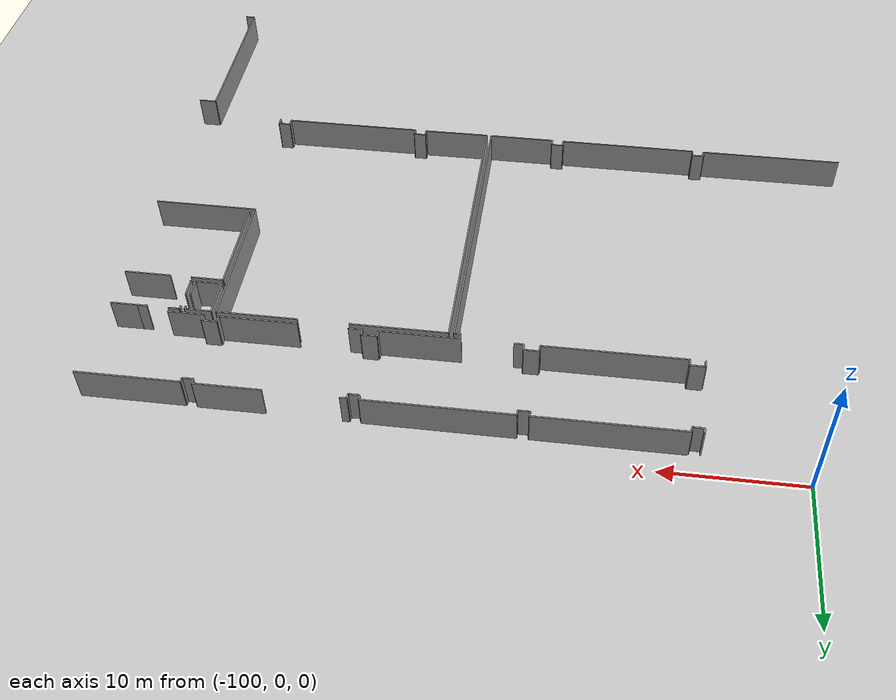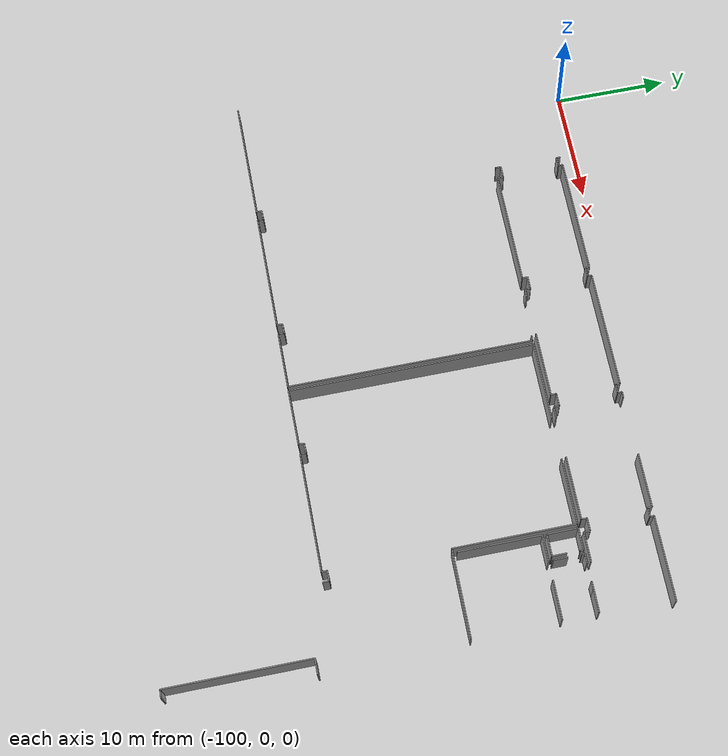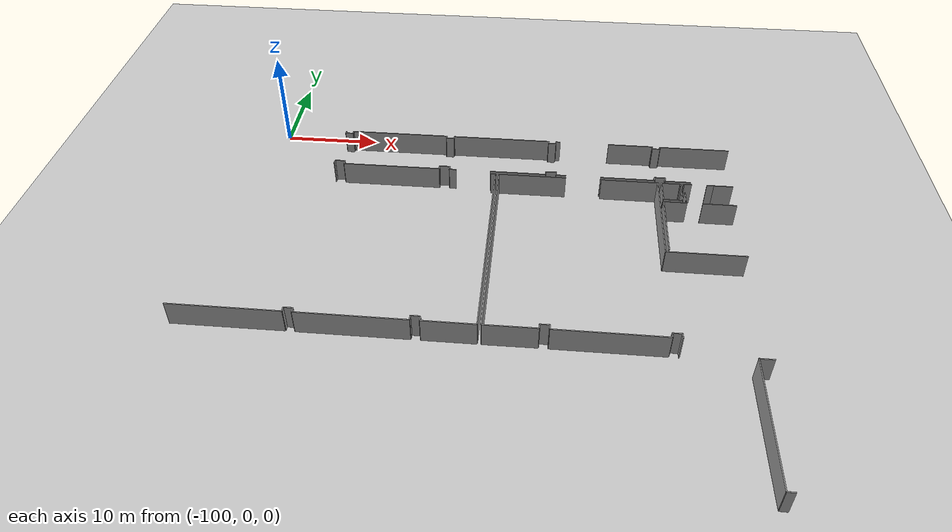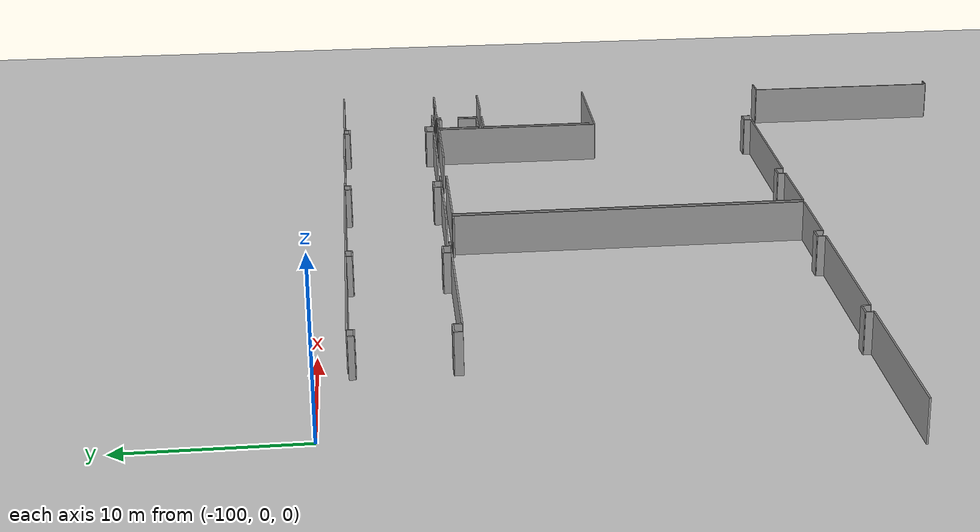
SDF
<sdf version="1.6">
 <world name="default">
  <model name="ground_plane">
   <static>1</static>
   <link name="link">
    <collision name="collision">
     <geometry><plane><normal>0 0 1</normal><size>100 100</size></plane></geometry>
     <surface><friction><ode><mu>100</mu><mu2>50</mu2></ode></friction></surface>
    </collision>
    <visual name="visual">
     <cast_shadows>0</cast_shadows>
     <geometry><plane><normal>0 0 1</normal><size>100 100</size></plane></geometry>
     <material>
      <script><uri>file://media/materials/scripts/gazebo.material</uri><name>Gazebo/Grey</name></script>
     </material>
    </visual>
   </link>
  </model>
  <model name="50015847">
   <static>1</static>
   <link name="Wall_149">
    <collision name="Wall_149_Collision">
     <geometry><box><size>0.475415670921 0.1 2.5</size></box></geometry>
     <pose>0.23770783546 0 1.25 0 0 0</pose>
    </collision>
    <visual name="Wall_149_Visual">
     <pose>0.23770783546 0 1.25 0 0 0</pose>
     <geometry><box><size>0.475415670921 0.1 2.5</size></box></geometry>
     <material>
      <script><uri>file://media/materials/scripts/gazebo.material</uri><name>Gazebo/Grey</name></script>
      <ambient>1 1 1 1</ambient>
     </material>
    </visual>
    <pose>56.0591345909 -51.9578481721 0 0 0 0.0</pose>
   </link>
   <link name="Wall_150">
    <collision name="Wall_150_Collision">
     <geometry><box><size>21.4735343469 0.1 2.5</size></box></geometry>
     <pose>10.7367671734 0 1.25 0 0 0</pose>
    </collision>
    <visual name="Wall_150_Visual">
     <pose>10.7367671734 0 1.25 0 0 0</pose>
     <geometry><box><size>21.4735343469 0.1 2.5</size></box></geometry>
     <material>
      <script><uri>file://media/materials/scripts/gazebo.material</uri><name>Gazebo/Grey</name></script>
      <ambient>1 1 1 1</ambient>
     </material>
    </visual>
    <pose>56.5345502619 -51.9578481721 0 0 0 -1.57079632679</pose>
   </link>
   <link name="Wall_151">
    <collision name="Wall_151_Collision">
     <geometry><box><size>4.96949204251 0.1 2.5</size></box></geometry>
     <pose>2.48474602125 0 1.25 0 0 0</pose>
    </collision>
    <visual name="Wall_151_Visual">
     <pose>2.48474602125 0 1.25 0 0 0</pose>
     <geometry><box><size>4.96949204251 0.1 2.5</size></box></geometry>
     <material>
      <script><uri>file://media/materials/scripts/gazebo.material</uri><name>Gazebo/Grey</name></script>
      <ambient>1 1 1 1</ambient>
     </material>
    </visual>
    <pose>56.5345502619 -73.4313825189 0 0 0 3.14159265359</pose>
   </link>
   <link name="Wall_152">
    <collision name="Wall_152_Collision">
     <geometry><box><size>0.513296384807 0.1 2.5</size></box></geometry>
     <pose>0.256648192404 0 1.25 0 0 0</pose>
    </collision>
    <visual name="Wall_152_Visual">
     <pose>0.256648192404 0 1.25 0 0 0</pose>
     <geometry><box><size>0.513296384807 0.1 2.5</size></box></geometry>
     <material>
      <script><uri>file://media/materials/scripts/gazebo.material</uri><name>Gazebo/Grey</name></script>
      <ambient>1 1 1 1</ambient>
     </material>
    </visual>
    <pose>51.5650582194 -73.4313825189 0 0 0 1.57079632679</pose>
   </link>
   <link name="Wall_153">
    <collision name="Wall_153_Collision">
     <geometry><box><size>0.880917272589 0.1 2.5</size></box></geometry>
     <pose>0.440458636294 0 1.25 0 0 0</pose>
    </collision>
    <visual name="Wall_153_Visual">
     <pose>0.440458636294 0 1.25 0 0 0</pose>
     <geometry><box><size>0.880917272589 0.1 2.5</size></box></geometry>
     <material>
      <script><uri>file://media/materials/scripts/gazebo.material</uri><name>Gazebo/Grey</name></script>
      <ambient>1 1 1 1</ambient>
     </material>
    </visual>
    <pose>51.5650582194 -72.9180861341 0 0 0 3.14159265359</pose>
   </link>
   <link name="Wall_154">
    <collision name="Wall_154_Collision">
     <geometry><box><size>0.506940560329 0.1 2.5</size></box></geometry>
     <pose>0.253470280165 0 1.25 0 0 0</pose>
    </collision>
    <visual name="Wall_154_Visual">
     <pose>0.253470280165 0 1.25 0 0 0</pose>
     <geometry><box><size>0.506940560329 0.1 2.5</size></box></geometry>
     <material>
      <script><uri>file://media/materials/scripts/gazebo.material</uri><name>Gazebo/Grey</name></script>
      <ambient>1 1 1 1</ambient>
     </material>
    </visual>
    <pose>50.6841409468 -72.9180861341 0 0 0 -1.57079632679</pose>
   </link>
   <link name="Wall_155">
    <collision name="Wall_155_Collision">
     <geometry><box><size>10.3630446942 0.1 2.5</size></box></geometry>
     <pose>5.18152234708 0 1.25 0 0 0</pose>
    </collision>
    <visual name="Wall_155_Visual">
     <pose>5.18152234708 0 1.25 0 0 0</pose>
     <geometry><box><size>10.3630446942 0.1 2.5</size></box></geometry>
     <material>
      <script><uri>file://media/materials/scripts/gazebo.material</uri><name>Gazebo/Grey</name></script>
      <ambient>1 1 1 1</ambient>
     </material>
    </visual>
    <pose>50.6841409468 -73.4250266945 0 0 0 3.14159265359</pose>
   </link>
   <link name="Wall_156">
    <collision name="Wall_156_Collision">
     <geometry><box><size>0.490161183709 0.1 2.5</size></box></geometry>
     <pose>0.245080591854 0 1.25 0 0 0</pose>
    </collision>
    <visual name="Wall_156_Visual">
     <pose>0.245080591854 0 1.25 0 0 0</pose>
     <geometry><box><size>0.490161183709 0.1 2.5</size></box></geometry>
     <material>
      <script><uri>file://media/materials/scripts/gazebo.material</uri><name>Gazebo/Grey</name></script>
      <ambient>1 1 1 1</ambient>
     </material>
    </visual>
    <pose>40.3210962526 -73.4250266945 0 0 0 1.57079632679</pose>
   </link>
   <link name="Wall_157">
    <collision name="Wall_157_Collision">
     <geometry><box><size>0.85778207149 0.1 2.5</size></box></geometry>
     <pose>0.428891035745 0 1.25 0 0 0</pose>
    </collision>
    <visual name="Wall_157_Visual">
     <pose>0.428891035745 0 1.25 0 0 0</pose>
     <geometry><box><size>0.85778207149 0.1 2.5</size></box></geometry>
     <material>
      <script><uri>file://media/materials/scripts/gazebo.material</uri><name>Gazebo/Grey</name></script>
      <ambient>1 1 1 1</ambient>
     </material>
    </visual>
    <pose>40.3210962526 -72.9348655108 0 0 0 3.14159265359</pose>
   </link>
   <link name="Wall_158">
    <collision name="Wall_158_Collision">
     <geometry><box><size>0.475415670921 0.1 2.5</size></box></geometry>
     <pose>0.23770783546 0 1.25 0 0 0</pose>
    </collision>
    <visual name="Wall_158_Visual">
     <pose>0.23770783546 0 1.25 0 0 0</pose>
     <geometry><box><size>0.475415670921 0.1 2.5</size></box></geometry>
     <material>
      <script><uri>file://media/materials/scripts/gazebo.material</uri><name>Gazebo/Grey</name></script>
      <ambient>1 1 1 1</ambient>
     </material>
    </visual>
    <pose>39.4633141811 -72.9348655108 0 0 0 -1.57079632679</pose>
   </link>
   <link name="Wall_159">
    <collision name="Wall_159_Collision">
     <geometry><box><size>10.6203387055 0.1 2.5</size></box></geometry>
     <pose>5.31016935276 0 1.25 0 0 0</pose>
    </collision>
    <visual name="Wall_159_Visual">
     <pose>5.31016935276 0 1.25 0 0 0</pose>
     <geometry><box><size>10.6203387055 0.1 2.5</size></box></geometry>
     <material>
      <script><uri>file://media/materials/scripts/gazebo.material</uri><name>Gazebo/Grey</name></script>
      <ambient>1 1 1 1</ambient>
     </material>
    </visual>
    <pose>39.4633141811 -73.4102811817 0 0 0 -3.14020423106</pose>
   </link>
   <link name="Wall_1055">
    <collision name="Wall_1055_Collision">
     <geometry><box><size>1.94411959119 0.1 2.5</size></box></geometry>
     <pose>0.972059795597 0 1.25 0 0 0</pose>
    </collision>
    <visual name="Wall_1055_Visual">
     <pose>0.972059795597 0 1.25 0 0 0</pose>
     <geometry><box><size>1.94411959119 0.1 2.5</size></box></geometry>
     <material>
      <script><uri>file://media/materials/scripts/gazebo.material</uri><name>Gazebo/Grey</name></script>
      <ambient>1 1 1 1</ambient>
     </material>
    </visual>
    <pose>78.989932374 -51.9253063507 0 0 0 0.0</pose>
   </link>
   <link name="Wall_1058">
    <collision name="Wall_1058_Collision">
     <geometry><box><size>0.0655921086083 0.1 2.5</size></box></geometry>
     <pose>0.0327960543042 0 1.25 0 0 0</pose>
    </collision>
    <visual name="Wall_1058_Visual">
     <pose>0.0327960543042 0 1.25 0 0 0</pose>
     <geometry><box><size>0.0655921086083 0.1 2.5</size></box></geometry>
     <material>
      <script><uri>file://media/materials/scripts/gazebo.material</uri><name>Gazebo/Grey</name></script>
      <ambient>1 1 1 1</ambient>
     </material>
    </visual>
    <pose>75.9993898409 -54.6425484314 0 0 0 3.14159265359</pose>
   </link>
   <link name="Wall_1059">
    <collision name="Wall_1059_Collision">
     <geometry><box><size>1.29277469873 0.1 2.5</size></box></geometry>
     <pose>0.646387349367 0 1.25 0 0 0</pose>
    </collision>
    <visual name="Wall_1059_Visual">
     <pose>0.646387349367 0 1.25 0 0 0</pose>
     <geometry><box><size>1.29277469873 0.1 2.5</size></box></geometry>
     <material>
      <script><uri>file://media/materials/scripts/gazebo.material</uri><name>Gazebo/Grey</name></script>
      <ambient>1 1 1 1</ambient>
     </material>
    </visual>
    <pose>75.9337977322 -54.6425484314 0 0 0 1.57079632679</pose>
   </link>
   <link name="Wall_1060">
    <collision name="Wall_1060_Collision">
     <geometry><box><size>0.270758122744 0.1 2.5</size></box></geometry>
     <pose>0.135379061372 0 1.25 0 0 0</pose>
    </collision>
    <visual name="Wall_1060_Visual">
     <pose>0.135379061372 0 1.25 0 0 0</pose>
     <geometry><box><size>0.270758122744 0.1 2.5</size></box></geometry>
     <material>
      <script><uri>file://media/materials/scripts/gazebo.material</uri><name>Gazebo/Grey</name></script>
      <ambient>1 1 1 1</ambient>
     </material>
    </visual>
    <pose>75.9337977322 -52.1998779682 0 0 0 1.57079632679</pose>
   </link>
   <link name="Wall_1061">
    <collision name="Wall_1061_Collision">
     <geometry><box><size>0.823714852291 0.1 2.5</size></box></geometry>
     <pose>0.411857426145 0 1.25 0 0 0</pose>
    </collision>
    <visual name="Wall_1061_Visual">
     <pose>0.411857426145 0 1.25 0 0 0</pose>
     <geometry><box><size>0.823714852291 0.1 2.5</size></box></geometry>
     <material>
      <script><uri>file://media/materials/scripts/gazebo.material</uri><name>Gazebo/Grey</name></script>
      <ambient>1 1 1 1</ambient>
     </material>
    </visual>
    <pose>75.9337977322 -51.9291198454 0 0 0 0.0</pose>
   </link>
   <link name="Wall_1062">
    <collision name="Wall_1062_Collision">
     <geometry><box><size>0.706523740757 0.1 2.5</size></box></geometry>
     <pose>0.353261870378 0 1.25 0 0 0</pose>
    </collision>
    <visual name="Wall_1062_Visual">
     <pose>0.353261870378 0 1.25 0 0 0</pose>
     <geometry><box><size>0.706523740757 0.1 2.5</size></box></geometry>
     <material>
      <script><uri>file://media/materials/scripts/gazebo.material</uri><name>Gazebo/Grey</name></script>
      <ambient>1 1 1 1</ambient>
     </material>
    </visual>
    <pose>78.2834189251 -51.9291198454 0 0 0 0.00539757262711</pose>
   </link>
   <link name="Wall_1063">
    <collision name="Wall_1063_Collision">
     <geometry><box><size>7.20775919052 0.1 2.5</size></box></geometry>
     <pose>3.60387959526 0 1.25 0 0 0</pose>
    </collision>
    <visual name="Wall_1063_Visual">
     <pose>3.60387959526 0 1.25 0 0 0</pose>
     <geometry><box><size>7.20775919052 0.1 2.5</size></box></geometry>
     <material>
      <script><uri>file://media/materials/scripts/gazebo.material</uri><name>Gazebo/Grey</name></script>
      <ambient>1 1 1 1</ambient>
     </material>
    </visual>
    <pose>73.6823104693 -62.2077591905 0 0 0 1.57079632679</pose>
   </link>
   <link name="Wall_1064">
    <collision name="Wall_1064_Collision">
     <geometry><box><size>2.33894340774 0.1 2.5</size></box></geometry>
     <pose>1.16947170387 0 1.25 0 0 0</pose>
    </collision>
    <visual name="Wall_1064_Visual">
     <pose>1.16947170387 0 1.25 0 0 0</pose>
     <geometry><box><size>2.33894340774 0.1 2.5</size></box></geometry>
     <material>
      <script><uri>file://media/materials/scripts/gazebo.material</uri><name>Gazebo/Grey</name></script>
      <ambient>1 1 1 1</ambient>
     </material>
    </visual>
    <pose>73.6823104693 -55.0 0 0 0 0.0</pose>
   </link>
   <link name="Wall_1065">
    <collision name="Wall_1065_Collision">
     <geometry><box><size>3.38740021356 0.1 2.5</size></box></geometry>
     <pose>1.69370010678 0 1.25 0 0 0</pose>
    </collision>
    <visual name="Wall_1065_Visual">
     <pose>1.69370010678 0 1.25 0 0 0</pose>
     <geometry><box><size>3.38740021356 0.1 2.5</size></box></geometry>
     <material>
      <script><uri>file://media/materials/scripts/gazebo.material</uri><name>Gazebo/Grey</name></script>
      <ambient>1 1 1 1</ambient>
     </material>
    </visual>
    <pose>77.5463975187 -55.0 0 0 0 0.0</pose>
   </link>
   <link name="Wall_1068">
    <collision name="Wall_1068_Collision">
     <geometry><box><size>2.66080235928 0.1 2.5</size></box></geometry>
     <pose>1.33040117964 0 1.25 0 0 0</pose>
    </collision>
    <visual name="Wall_1068_Visual">
     <pose>1.33040117964 0 1.25 0 0 0</pose>
     <geometry><box><size>2.66080235928 0.1 2.5</size></box></geometry>
     <material>
      <script><uri>file://media/materials/scripts/gazebo.material</uri><name>Gazebo/Grey</name></script>
      <ambient>1 1 1 1</ambient>
     </material>
    </visual>
    <pose>73.6879035949 -54.6186505313 0 0 0 1.57079632679</pose>
   </link>
   <link name="Wall_1069">
    <collision name="Wall_1069_Collision">
     <geometry><box><size>1.90700157624 0.1 2.5</size></box></geometry>
     <pose>0.953500788122 0 1.25 0 0 0</pose>
    </collision>
    <visual name="Wall_1069_Visual">
     <pose>0.953500788122 0 1.25 0 0 0</pose>
     <geometry><box><size>1.90700157624 0.1 2.5</size></box></geometry>
     <material>
      <script><uri>file://media/materials/scripts/gazebo.material</uri><name>Gazebo/Grey</name></script>
      <ambient>1 1 1 1</ambient>
     </material>
    </visual>
    <pose>73.6879035949 -51.9578481721 0 0 0 0.0</pose>
   </link>
   <link name="Wall_1070">
    <collision name="Wall_1070_Collision">
     <geometry><box><size>0.27177505466 0.1 2.5</size></box></geometry>
     <pose>0.13588752733 0 1.25 0 0 0</pose>
    </collision>
    <visual name="Wall_1070_Visual">
     <pose>0.13588752733 0 1.25 0 0 0</pose>
     <geometry><box><size>0.27177505466 0.1 2.5</size></box></geometry>
     <material>
      <script><uri>file://media/materials/scripts/gazebo.material</uri><name>Gazebo/Grey</name></script>
      <ambient>1 1 1 1</ambient>
     </material>
    </visual>
    <pose>75.5949051711 -51.9578481721 0 0 0 -1.57079632679</pose>
   </link>
   <link name="Wall_1071">
    <collision name="Wall_1071_Collision">
     <geometry><box><size>1.27141912849 0.1 2.5</size></box></geometry>
     <pose>0.635709564245 0 1.25 0 0 0</pose>
    </collision>
    <visual name="Wall_1071_Visual">
     <pose>0.635709564245 0 1.25 0 0 0</pose>
     <geometry><box><size>1.27141912849 0.1 2.5</size></box></geometry>
     <material>
      <script><uri>file://media/materials/scripts/gazebo.material</uri><name>Gazebo/Grey</name></script>
      <ambient>1 1 1 1</ambient>
     </material>
    </visual>
    <pose>75.5949051711 -53.3640107795 0 0 0 -1.57079632679</pose>
   </link>
   <link name="Wall_1072">
    <collision name="Wall_1072_Collision">
     <geometry><box><size>1.90707539423 0.1 2.5</size></box></geometry>
     <pose>0.953537697115 0 1.25 0 0 0</pose>
    </collision>
    <visual name="Wall_1072_Visual">
     <pose>0.953537697115 0 1.25 0 0 0</pose>
     <geometry><box><size>1.90707539423 0.1 2.5</size></box></geometry>
     <material>
      <script><uri>file://media/materials/scripts/gazebo.material</uri><name>Gazebo/Grey</name></script>
      <ambient>1 1 1 1</ambient>
     </material>
    </visual>
    <pose>75.5949051711 -54.635429908 0 0 0 3.13279405382</pose>
   </link>
   <link name="Wall_1073">
    <collision name="Wall_1073_Collision">
     <geometry><box><size>21.4984491788 0.1 2.5</size></box></geometry>
     <pose>10.7492245894 0 1.25 0 0 0</pose>
    </collision>
    <visual name="Wall_1073_Visual">
     <pose>10.7492245894 0 1.25 0 0 0</pose>
     <geometry><box><size>21.4984491788 0.1 2.5</size></box></geometry>
     <material>
      <script><uri>file://media/materials/scripts/gazebo.material</uri><name>Gazebo/Grey</name></script>
      <ambient>1 1 1 1</ambient>
     </material>
    </visual>
    <pose>56.9034423145 -73.4435857019 0 0 0 1.57079632679</pose>
   </link>
   <link name="Wall_1074">
    <collision name="Wall_1074_Collision">
     <geometry><box><size>6.95886510398 0.1 2.5</size></box></geometry>
     <pose>3.47943255199 0 1.25 0 0 0</pose>
    </collision>
    <visual name="Wall_1074_Visual">
     <pose>3.47943255199 0 1.25 0 0 0</pose>
     <geometry><box><size>6.95886510398 0.1 2.5</size></box></geometry>
     <material>
      <script><uri>file://media/materials/scripts/gazebo.material</uri><name>Gazebo/Grey</name></script>
      <ambient>1 1 1 1</ambient>
     </material>
    </visual>
    <pose>56.9034423145 -51.9451365231 0 0 0 0.0</pose>
   </link>
   <link name="Wall_1075">
    <collision name="Wall_1075_Collision">
     <geometry><box><size>5.79498652565 0.1 2.5</size></box></geometry>
     <pose>2.89749326283 0 1.25 0 0 0</pose>
    </collision>
    <visual name="Wall_1075_Visual">
     <pose>2.89749326283 0 1.25 0 0 0</pose>
     <geometry><box><size>5.79498652565 0.1 2.5</size></box></geometry>
     <material>
      <script><uri>file://media/materials/scripts/gazebo.material</uri><name>Gazebo/Grey</name></script>
      <ambient>1 1 1 1</ambient>
     </material>
    </visual>
    <pose>67.5197030559 -51.9451365231 0 0 0 0.0</pose>
   </link>
   <link name="Wall_1076">
    <collision name="Wall_1076_Collision">
     <geometry><box><size>10.6180403722 0.1 2.5</size></box></geometry>
     <pose>5.3090201861 0 1.25 0 0 0</pose>
    </collision>
    <visual name="Wall_1076_Visual">
     <pose>5.3090201861 0 1.25 0 0 0</pose>
     <geometry><box><size>10.6180403722 0.1 2.5</size></box></geometry>
     <material>
      <script><uri>file://media/materials/scripts/gazebo.material</uri><name>Gazebo/Grey</name></script>
      <ambient>1 1 1 1</ambient>
     </material>
    </visual>
    <pose>73.3146895815 -51.9451365231 0 0 0 -1.57079632679</pose>
   </link>
   <link name="Wall_1077">
    <collision name="Wall_1077_Collision">
     <geometry><box><size>7.63766715818 0.1 2.5</size></box></geometry>
     <pose>3.81883357909 0 1.25 0 0 0</pose>
    </collision>
    <visual name="Wall_1077_Visual">
     <pose>3.81883357909 0 1.25 0 0 0</pose>
     <geometry><box><size>7.63766715818 0.1 2.5</size></box></geometry>
     <material>
      <script><uri>file://media/materials/scripts/gazebo.material</uri><name>Gazebo/Grey</name></script>
      <ambient>1 1 1 1</ambient>
     </material>
    </visual>
    <pose>73.3146895815 -62.5631768953 0 0 0 0.0</pose>
   </link>
   <link name="Wall_1080">
    <collision name="Wall_1080_Collision">
     <geometry><box><size>0.552956729547 0.1 2.5</size></box></geometry>
     <pose>0.276478364773 0 1.25 0 0 0</pose>
    </collision>
    <visual name="Wall_1080_Visual">
     <pose>0.276478364773 0 1.25 0 0 0</pose>
     <geometry><box><size>0.552956729547 0.1 2.5</size></box></geometry>
     <material>
      <script><uri>file://media/materials/scripts/gazebo.material</uri><name>Gazebo/Grey</name></script>
      <ambient>1 1 1 1</ambient>
     </material>
    </visual>
    <pose>73.9866273453 -73.4878222403 0 0 0 1.57079632679</pose>
   </link>
   <link name="Wall_1081">
    <collision name="Wall_1081_Collision">
     <geometry><box><size>0.879646107693 0.1 2.5</size></box></geometry>
     <pose>0.439823053847 0 1.25 0 0 0</pose>
    </collision>
    <visual name="Wall_1081_Visual">
     <pose>0.439823053847 0 1.25 0 0 0</pose>
     <geometry><box><size>0.879646107693 0.1 2.5</size></box></geometry>
     <material>
      <script><uri>file://media/materials/scripts/gazebo.material</uri><name>Gazebo/Grey</name></script>
      <ambient>1 1 1 1</ambient>
     </material>
    </visual>
    <pose>73.9866273453 -72.9348655108 0 0 0 3.14159265359</pose>
   </link>
   <link name="Wall_1082">
    <collision name="Wall_1082_Collision">
     <geometry><box><size>0.490161183709 0.1 2.5</size></box></geometry>
     <pose>0.245080591854 0 1.25 0 0 0</pose>
    </collision>
    <visual name="Wall_1082_Visual">
     <pose>0.245080591854 0 1.25 0 0 0</pose>
     <geometry><box><size>0.490161183709 0.1 2.5</size></box></geometry>
     <material>
      <script><uri>file://media/materials/scripts/gazebo.material</uri><name>Gazebo/Grey</name></script>
      <ambient>1 1 1 1</ambient>
     </material>
    </visual>
    <pose>73.1069812376 -72.9348655108 0 0 0 -1.57079632679</pose>
   </link>
   <link name="Wall_1083">
    <collision name="Wall_1083_Collision">
     <geometry><box><size>10.3485534143 0.1 2.5</size></box></geometry>
     <pose>5.17427670717 0 1.25 0 0 0</pose>
    </collision>
    <visual name="Wall_1083_Visual">
     <pose>5.17427670717 0 1.25 0 0 0</pose>
     <geometry><box><size>10.3485534143 0.1 2.5</size></box></geometry>
     <material>
      <script><uri>file://media/materials/scripts/gazebo.material</uri><name>Gazebo/Grey</name></script>
      <ambient>1 1 1 1</ambient>
     </material>
    </visual>
    <pose>73.1069812376 -73.4250266945 0 0 0 3.14159265359</pose>
   </link>
   <link name="Wall_1084">
    <collision name="Wall_1084_Collision">
     <geometry><box><size>0.49829663904 0.1 2.5</size></box></geometry>
     <pose>0.24914831952 0 1.25 0 0 0</pose>
    </collision>
    <visual name="Wall_1084_Visual">
     <pose>0.24914831952 0 1.25 0 0 0</pose>
     <geometry><box><size>0.49829663904 0.1 2.5</size></box></geometry>
     <material>
      <script><uri>file://media/materials/scripts/gazebo.material</uri><name>Gazebo/Grey</name></script>
      <ambient>1 1 1 1</ambient>
     </material>
    </visual>
    <pose>62.7584278233 -73.4250266945 0 0 0 1.57079632679</pose>
   </link>
   <link name="Wall_1085">
    <collision name="Wall_1085_Collision">
     <geometry><box><size>0.896171251335 0.1 2.5</size></box></geometry>
     <pose>0.448085625667 0 1.25 0 0 0</pose>
    </collision>
    <visual name="Wall_1085_Visual">
     <pose>0.448085625667 0 1.25 0 0 0</pose>
     <geometry><box><size>0.896171251335 0.1 2.5</size></box></geometry>
     <material>
      <script><uri>file://media/materials/scripts/gazebo.material</uri><name>Gazebo/Grey</name></script>
      <ambient>1 1 1 1</ambient>
     </material>
    </visual>
    <pose>62.7584278233 -72.9267300554 0 0 0 3.14159265359</pose>
   </link>
   <link name="Wall_1086">
    <collision name="Wall_1086_Collision">
     <geometry><box><size>0.48405959221 0.1 2.5</size></box></geometry>
     <pose>0.242029796105 0 1.25 0 0 0</pose>
    </collision>
    <visual name="Wall_1086_Visual">
     <pose>0.242029796105 0 1.25 0 0 0</pose>
     <geometry><box><size>0.48405959221 0.1 2.5</size></box></geometry>
     <material>
      <script><uri>file://media/materials/scripts/gazebo.material</uri><name>Gazebo/Grey</name></script>
      <ambient>1 1 1 1</ambient>
     </material>
    </visual>
    <pose>61.8622565719 -72.9267300554 0 0 0 -1.57079632679</pose>
   </link>
   <link name="Wall_1087">
    <collision name="Wall_1087_Collision">
     <geometry><box><size>4.95892270765 0.1 2.5</size></box></geometry>
     <pose>2.47946135382 0 1.25 0 0 0</pose>
    </collision>
    <visual name="Wall_1087_Visual">
     <pose>2.47946135382 0 1.25 0 0 0</pose>
     <geometry><box><size>4.95892270765 0.1 2.5</size></box></geometry>
     <material>
      <script><uri>file://media/materials/scripts/gazebo.material</uri><name>Gazebo/Grey</name></script>
      <ambient>1 1 1 1</ambient>
     </material>
    </visual>
    <pose>61.8622565719 -73.4107896476 0 0 0 -3.13497906122</pose>
   </link>
   <link name="Wall_1090">
    <collision name="Wall_1090_Collision">
     <geometry><box><size>0.348044948391 0.1 2.5</size></box></geometry>
     <pose>0.174022474195 0 1.25 0 0 0</pose>
    </collision>
    <visual name="Wall_1090_Visual">
     <pose>0.174022474195 0 1.25 0 0 0</pose>
     <geometry><box><size>0.348044948391 0.1 2.5</size></box></geometry>
     <material>
      <script><uri>file://media/materials/scripts/gazebo.material</uri><name>Gazebo/Grey</name></script>
      <ambient>1 1 1 1</ambient>
     </material>
    </visual>
    <pose>39.4750088982 -45.5501601668 0 0 0 -1.57079632679</pose>
   </link>
   <link name="Wall_1091">
    <collision name="Wall_1091_Collision">
     <geometry><box><size>0.799562719276 0.1 2.5</size></box></geometry>
     <pose>0.399781359638 0 1.25 0 0 0</pose>
    </collision>
    <visual name="Wall_1091_Visual">
     <pose>0.399781359638 0 1.25 0 0 0</pose>
     <geometry><box><size>0.799562719276 0.1 2.5</size></box></geometry>
     <material>
      <script><uri>file://media/materials/scripts/gazebo.material</uri><name>Gazebo/Grey</name></script>
      <ambient>1 1 1 1</ambient>
     </material>
    </visual>
    <pose>39.4750088982 -45.8982051152 0 0 0 0.0</pose>
   </link>
   <link name="Wall_1092">
    <collision name="Wall_1092_Collision">
     <geometry><box><size>0.378044439925 0.1 2.5</size></box></geometry>
     <pose>0.189022219962 0 1.25 0 0 0</pose>
    </collision>
    <visual name="Wall_1092_Visual">
     <pose>0.189022219962 0 1.25 0 0 0</pose>
     <geometry><box><size>0.378044439925 0.1 2.5</size></box></geometry>
     <material>
      <script><uri>file://media/materials/scripts/gazebo.material</uri><name>Gazebo/Grey</name></script>
      <ambient>1 1 1 1</ambient>
     </material>
    </visual>
    <pose>40.2745716174 -45.8982051152 0 0 0 1.57079632679</pose>
   </link>
   <link name="Wall_1093">
    <collision name="Wall_1093_Collision">
     <geometry><box><size>10.426094473 0.1 2.5</size></box></geometry>
     <pose>5.21304723649 0 1.25 0 0 0</pose>
    </collision>
    <visual name="Wall_1093_Visual">
     <pose>5.21304723649 0 1.25 0 0 0</pose>
     <geometry><box><size>10.426094473 0.1 2.5</size></box></geometry>
     <material>
      <script><uri>file://media/materials/scripts/gazebo.material</uri><name>Gazebo/Grey</name></script>
      <ambient>1 1 1 1</ambient>
     </material>
    </visual>
    <pose>40.2745716174 -45.5201606752 0 0 0 0.0</pose>
   </link>
   <link name="Wall_1094">
    <collision name="Wall_1094_Collision">
     <geometry><box><size>0.36228199522 0.1 2.5</size></box></geometry>
     <pose>0.18114099761 0 1.25 0 0 0</pose>
    </collision>
    <visual name="Wall_1094_Visual">
     <pose>0.18114099761 0 1.25 0 0 0</pose>
     <geometry><box><size>0.36228199522 0.1 2.5</size></box></geometry>
     <material>
      <script><uri>file://media/materials/scripts/gazebo.material</uri><name>Gazebo/Grey</name></script>
      <ambient>1 1 1 1</ambient>
     </material>
    </visual>
    <pose>50.7006660904 -45.5201606752 0 0 0 -1.57079632679</pose>
   </link>
   <link name="Wall_1095">
    <collision name="Wall_1095_Collision">
     <geometry><box><size>0.814562465043 0.1 2.5</size></box></geometry>
     <pose>0.407281232521 0 1.25 0 0 0</pose>
    </collision>
    <visual name="Wall_1095_Visual">
     <pose>0.407281232521 0 1.25 0 0 0</pose>
     <geometry><box><size>0.814562465043 0.1 2.5</size></box></geometry>
     <material>
      <script><uri>file://media/materials/scripts/gazebo.material</uri><name>Gazebo/Grey</name></script>
      <ambient>1 1 1 1</ambient>
     </material>
    </visual>
    <pose>50.7006660904 -45.8824426705 0 0 0 0.0</pose>
   </link>
   <link name="Wall_1096">
    <collision name="Wall_1096_Collision">
     <geometry><box><size>0.365587023949 0.1 2.5</size></box></geometry>
     <pose>0.182793511974 0 1.25 0 0 0</pose>
    </collision>
    <visual name="Wall_1096_Visual">
     <pose>0.182793511974 0 1.25 0 0 0</pose>
     <geometry><box><size>0.365587023949 0.1 2.5</size></box></geometry>
     <material>
      <script><uri>file://media/materials/scripts/gazebo.material</uri><name>Gazebo/Grey</name></script>
      <ambient>1 1 1 1</ambient>
     </material>
    </visual>
    <pose>51.5152285554 -45.8824426705 0 0 0 1.57079632679</pose>
   </link>
   <link name="Wall_1097">
    <collision name="Wall_1097_Collision">
     <geometry><box><size>10.4113489602 0.1 2.5</size></box></geometry>
     <pose>5.20567448009 0 1.25 0 0 0</pose>
    </collision>
    <visual name="Wall_1097_Visual">
     <pose>5.20567448009 0 1.25 0 0 0</pose>
     <geometry><box><size>10.4113489602 0.1 2.5</size></box></geometry>
     <material>
      <script><uri>file://media/materials/scripts/gazebo.material</uri><name>Gazebo/Grey</name></script>
      <ambient>1 1 1 1</ambient>
     </material>
    </visual>
    <pose>51.5152285554 -45.5168556465 0 0 0 0.0</pose>
   </link>
   <link name="Wall_1098">
    <collision name="Wall_1098_Collision">
     <geometry><box><size>0.374739411196 0.1 2.5</size></box></geometry>
     <pose>0.187369705598 0 1.25 0 0 0</pose>
    </collision>
    <visual name="Wall_1098_Visual">
     <pose>0.187369705598 0 1.25 0 0 0</pose>
     <geometry><box><size>0.374739411196 0.1 2.5</size></box></geometry>
     <material>
      <script><uri>file://media/materials/scripts/gazebo.material</uri><name>Gazebo/Grey</name></script>
      <ambient>1 1 1 1</ambient>
     </material>
    </visual>
    <pose>61.9265775156 -45.5168556465 0 0 0 -1.57079632679</pose>
   </link>
   <link name="Wall_1099">
    <collision name="Wall_1099_Collision">
     <geometry><box><size>0.774139421366 0.1 2.5</size></box></geometry>
     <pose>0.387069710683 0 1.25 0 0 0</pose>
    </collision>
    <visual name="Wall_1099_Visual">
     <pose>0.387069710683 0 1.25 0 0 0</pose>
     <geometry><box><size>0.774139421366 0.1 2.5</size></box></geometry>
     <material>
      <script><uri>file://media/materials/scripts/gazebo.material</uri><name>Gazebo/Grey</name></script>
      <ambient>1 1 1 1</ambient>
     </material>
    </visual>
    <pose>61.9265775156 -45.8915950577 0 0 0 0.0</pose>
   </link>
   <link name="Wall_1100">
    <collision name="Wall_1100_Collision">
     <geometry><box><size>0.363044694158 0.1 2.5</size></box></geometry>
     <pose>0.181522347079 0 1.25 0 0 0</pose>
    </collision>
    <visual name="Wall_1100_Visual">
     <pose>0.181522347079 0 1.25 0 0 0</pose>
     <geometry><box><size>0.363044694158 0.1 2.5</size></box></geometry>
     <material>
      <script><uri>file://media/materials/scripts/gazebo.material</uri><name>Gazebo/Grey</name></script>
      <ambient>1 1 1 1</ambient>
     </material>
    </visual>
    <pose>62.700716937 -45.8915950577 0 0 0 1.57079632679</pose>
   </link>
   <link name="Wall_1101">
    <collision name="Wall_1101_Collision">
     <geometry><box><size>0.497025474145 0.1 2.5</size></box></geometry>
     <pose>0.248512737072 0 1.25 0 0 0</pose>
    </collision>
    <visual name="Wall_1101_Visual">
     <pose>0.248512737072 0 1.25 0 0 0</pose>
     <geometry><box><size>0.497025474145 0.1 2.5</size></box></geometry>
     <material>
      <script><uri>file://media/materials/scripts/gazebo.material</uri><name>Gazebo/Grey</name></script>
      <ambient>1 1 1 1</ambient>
     </material>
    </visual>
    <pose>62.700716937 -45.5285503636 0 0 0 0.0</pose>
   </link>
   <link name="Wall_1102">
    <collision name="Wall_1102_Collision">
     <geometry><box><size>4.73127574109 0.1 2.5</size></box></geometry>
     <pose>2.36563787054 0 1.25 0 0 0</pose>
    </collision>
    <visual name="Wall_1102_Visual">
     <pose>2.36563787054 0 1.25 0 0 0</pose>
     <geometry><box><size>4.73127574109 0.1 2.5</size></box></geometry>
     <material>
      <script><uri>file://media/materials/scripts/gazebo.material</uri><name>Gazebo/Grey</name></script>
      <ambient>1 1 1 1</ambient>
     </material>
    </visual>
    <pose>68.4100269487 -45.5285503636 0 0 0 0.0</pose>
   </link>
   <link name="Wall_1103">
    <collision name="Wall_1103_Collision">
     <geometry><box><size>0.372959780343 0.1 2.5</size></box></geometry>
     <pose>0.186479890171 0 1.25 0 0 0</pose>
    </collision>
    <visual name="Wall_1103_Visual">
     <pose>0.186479890171 0 1.25 0 0 0</pose>
     <geometry><box><size>0.372959780343 0.1 2.5</size></box></geometry>
     <material>
      <script><uri>file://media/materials/scripts/gazebo.material</uri><name>Gazebo/Grey</name></script>
      <ambient>1 1 1 1</ambient>
     </material>
    </visual>
    <pose>73.1413026898 -45.5285503636 0 0 0 -1.57079632679</pose>
   </link>
   <link name="Wall_1104">
    <collision name="Wall_1104_Collision">
     <geometry><box><size>0.78151217776 0.1 2.5</size></box></geometry>
     <pose>0.39075608888 0 1.25 0 0 0</pose>
    </collision>
    <visual name="Wall_1104_Visual">
     <pose>0.39075608888 0 1.25 0 0 0</pose>
     <geometry><box><size>0.78151217776 0.1 2.5</size></box></geometry>
     <material>
      <script><uri>file://media/materials/scripts/gazebo.material</uri><name>Gazebo/Grey</name></script>
      <ambient>1 1 1 1</ambient>
     </material>
    </visual>
    <pose>73.1413026898 -45.9015101439 0 0 0 0.0</pose>
   </link>
   <link name="Wall_1105">
    <collision name="Wall_1105_Collision">
     <geometry><box><size>0.344231453704 0.1 2.5</size></box></geometry>
     <pose>0.172115726852 0 1.25 0 0 0</pose>
    </collision>
    <visual name="Wall_1105_Visual">
     <pose>0.172115726852 0 1.25 0 0 0</pose>
     <geometry><box><size>0.344231453704 0.1 2.5</size></box></geometry>
     <material>
      <script><uri>file://media/materials/scripts/gazebo.material</uri><name>Gazebo/Grey</name></script>
      <ambient>1 1 1 1</ambient>
     </material>
    </visual>
    <pose>73.9228148675 -45.9015101439 0 0 0 1.57079632679</pose>
   </link>
   <link name="Wall_1106">
    <collision name="Wall_1106_Collision">
     <geometry><box><size>7.35775664819 0.1 2.5</size></box></geometry>
     <pose>3.6788783241 0 1.25 0 0 0</pose>
    </collision>
    <visual name="Wall_1106_Visual">
     <pose>3.6788783241 0 1.25 0 0 0</pose>
     <geometry><box><size>7.35775664819 0.1 2.5</size></box></geometry>
     <material>
      <script><uri>file://media/materials/scripts/gazebo.material</uri><name>Gazebo/Grey</name></script>
      <ambient>1 1 1 1</ambient>
     </material>
    </visual>
    <pose>73.9228148675 -45.5572786902 0 0 0 0.0</pose>
   </link>
   <link name="Wall_1262">
    <collision name="Wall_1262_Collision">
     <geometry><box><size>2.58046473789 0.1 2.5</size></box></geometry>
     <pose>1.29023236894 0 1.25 0 0 0</pose>
    </collision>
    <visual name="Wall_1262_Visual">
     <pose>1.29023236894 0 1.25 0 0 0</pose>
     <geometry><box><size>2.58046473789 0.1 2.5</size></box></geometry>
     <material>
      <script><uri>file://media/materials/scripts/gazebo.material</uri><name>Gazebo/Grey</name></script>
      <ambient>1 1 1 1</ambient>
     </material>
    </visual>
    <pose>76.6929374078 -51.5927696141 0 0 0 3.14159265359</pose>
   </link>
   <link name="Wall_1263">
    <collision name="Wall_1263_Collision">
     <geometry><box><size>0.54075354655 0.1 2.5</size></box></geometry>
     <pose>0.270376773275 0 1.25 0 0 0</pose>
    </collision>
    <visual name="Wall_1263_Visual">
     <pose>0.270376773275 0 1.25 0 0 0</pose>
     <geometry><box><size>0.54075354655 0.1 2.5</size></box></geometry>
     <material>
      <script><uri>file://media/materials/scripts/gazebo.material</uri><name>Gazebo/Grey</name></script>
      <ambient>1 1 1 1</ambient>
     </material>
    </visual>
    <pose>74.11247267 -51.5927696141 0 0 0 1.57079632679</pose>
   </link>
   <link name="Wall_1264">
    <collision name="Wall_1264_Collision">
     <geometry><box><size>1.10540499314 0.1 2.5</size></box></geometry>
     <pose>0.552702496568 0 1.25 0 0 0</pose>
    </collision>
    <visual name="Wall_1264_Visual">
     <pose>0.552702496568 0 1.25 0 0 0</pose>
     <geometry><box><size>1.10540499314 0.1 2.5</size></box></geometry>
     <material>
      <script><uri>file://media/materials/scripts/gazebo.material</uri><name>Gazebo/Grey</name></script>
      <ambient>1 1 1 1</ambient>
     </material>
    </visual>
    <pose>74.11247267 -51.0520160675 0 0 0 3.14159265359</pose>
   </link>
   <link name="Wall_1265">
    <collision name="Wall_1265_Collision">
     <geometry><box><size>0.498550872019 0.1 2.5</size></box></geometry>
     <pose>0.24927543601 0 1.25 0 0 0</pose>
    </collision>
    <visual name="Wall_1265_Visual">
     <pose>0.24927543601 0 1.25 0 0 0</pose>
     <geometry><box><size>0.498550872019 0.1 2.5</size></box></geometry>
     <material>
      <script><uri>file://media/materials/scripts/gazebo.material</uri><name>Gazebo/Grey</name></script>
      <ambient>1 1 1 1</ambient>
     </material>
    </visual>
    <pose>73.0070676768 -51.0520160675 0 0 0 -1.57079632679</pose>
   </link>
   <link name="Wall_1266">
    <collision name="Wall_1266_Collision">
     <geometry><box><size>5.56515991254 0.1 2.5</size></box></geometry>
     <pose>2.78257995627 0 1.25 0 0 0</pose>
    </collision>
    <visual name="Wall_1266_Visual">
     <pose>2.78257995627 0 1.25 0 0 0</pose>
     <geometry><box><size>5.56515991254 0.1 2.5</size></box></geometry>
     <material>
      <script><uri>file://media/materials/scripts/gazebo.material</uri><name>Gazebo/Grey</name></script>
      <ambient>1 1 1 1</ambient>
     </material>
    </visual>
    <pose>73.0070676768 -51.5505669395 0 0 0 3.14159265359</pose>
   </link>
   <link name="Wall_1267">
    <collision name="Wall_1267_Collision">
     <geometry><box><size>0.990237453602 0.1 2.5</size></box></geometry>
     <pose>0.495118726801 0 1.25 0 0 0</pose>
    </collision>
    <visual name="Wall_1267_Visual">
     <pose>0.495118726801 0 1.25 0 0 0</pose>
     <geometry><box><size>0.990237453602 0.1 2.5</size></box></geometry>
     <material>
      <script><uri>file://media/materials/scripts/gazebo.material</uri><name>Gazebo/Grey</name></script>
      <ambient>1 1 1 1</ambient>
     </material>
    </visual>
    <pose>63.856968526 -51.5505669395 0 0 0 3.14159265359</pose>
   </link>
   <link name="Wall_1268">
    <collision name="Wall_1268_Collision">
     <geometry><box><size>0.485330757106 0.1 2.5</size></box></geometry>
     <pose>0.242665378553 0 1.25 0 0 0</pose>
    </collision>
    <visual name="Wall_1268_Visual">
     <pose>0.242665378553 0 1.25 0 0 0</pose>
     <geometry><box><size>0.485330757106 0.1 2.5</size></box></geometry>
     <material>
      <script><uri>file://media/materials/scripts/gazebo.material</uri><name>Gazebo/Grey</name></script>
      <ambient>1 1 1 1</ambient>
     </material>
    </visual>
    <pose>62.8667310724 -51.5505669395 0 0 0 1.57079632679</pose>
   </link>
   <link name="Wall_1269">
    <collision name="Wall_1269_Collision">
     <geometry><box><size>1.12015050592 0.1 2.5</size></box></geometry>
     <pose>0.560075252962 0 1.25 0 0 0</pose>
    </collision>
    <visual name="Wall_1269_Visual">
     <pose>0.560075252962 0 1.25 0 0 0</pose>
     <geometry><box><size>1.12015050592 0.1 2.5</size></box></geometry>
     <material>
      <script><uri>file://media/materials/scripts/gazebo.material</uri><name>Gazebo/Grey</name></script>
      <ambient>1 1 1 1</ambient>
     </material>
    </visual>
    <pose>62.8667310724 -51.0652361824 0 0 0 3.14159265359</pose>
   </link>
   <link name="Wall_1270">
    <collision name="Wall_1270_Collision">
     <geometry><box><size>0.476941068795 0.1 2.5</size></box></geometry>
     <pose>0.238470534398 0 1.25 0 0 0</pose>
    </collision>
    <visual name="Wall_1270_Visual">
     <pose>0.238470534398 0 1.25 0 0 0</pose>
     <geometry><box><size>0.476941068795 0.1 2.5</size></box></geometry>
     <material>
      <script><uri>file://media/materials/scripts/gazebo.material</uri><name>Gazebo/Grey</name></script>
      <ambient>1 1 1 1</ambient>
     </material>
    </visual>
    <pose>61.7465805664 -51.0652361824 0 0 0 -1.57079632679</pose>
   </link>
   <link name="Wall_1271">
    <collision name="Wall_1271_Collision">
     <geometry><box><size>5.76854629583 0.1 2.5</size></box></geometry>
     <pose>2.88427314791 0 1.25 0 0 0</pose>
    </collision>
    <visual name="Wall_1271_Visual">
     <pose>2.88427314791 0 1.25 0 0 0</pose>
     <geometry><box><size>5.76854629583 0.1 2.5</size></box></geometry>
     <material>
      <script><uri>file://media/materials/scripts/gazebo.material</uri><name>Gazebo/Grey</name></script>
      <ambient>1 1 1 1</ambient>
     </material>
    </visual>
    <pose>61.7465805664 -51.5421772512 0 0 0 3.14159265359</pose>
   </link>
   <link name="Wall_1272">
    <collision name="Wall_1272_Collision">
     <geometry><box><size>0.707276147862 0.1 2.5</size></box></geometry>
     <pose>0.353638073931 0 1.25 0 0 0</pose>
    </collision>
    <visual name="Wall_1272_Visual">
     <pose>0.353638073931 0 1.25 0 0 0</pose>
     <geometry><box><size>0.707276147862 0.1 2.5</size></box></geometry>
     <material>
      <script><uri>file://media/materials/scripts/gazebo.material</uri><name>Gazebo/Grey</name></script>
      <ambient>1 1 1 1</ambient>
     </material>
    </visual>
    <pose>52.3691971323 -51.5421772512 0 0 0 3.14159265359</pose>
   </link>
   <link name="Wall_1273">
    <collision name="Wall_1273_Collision">
     <geometry><box><size>0.470331011339 0.1 2.5</size></box></geometry>
     <pose>0.235165505669 0 1.25 0 0 0</pose>
    </collision>
    <visual name="Wall_1273_Visual">
     <pose>0.235165505669 0 1.25 0 0 0</pose>
     <geometry><box><size>0.470331011339 0.1 2.5</size></box></geometry>
     <material>
      <script><uri>file://media/materials/scripts/gazebo.material</uri><name>Gazebo/Grey</name></script>
      <ambient>1 1 1 1</ambient>
     </material>
    </visual>
    <pose>51.6619209844 -51.5421772512 0 0 0 1.57079632679</pose>
   </link>
   <link name="Wall_1274">
    <collision name="Wall_1274_Collision">
     <geometry><box><size>1.09930340164 0.1 2.5</size></box></geometry>
     <pose>0.549651700819 0 1.25 0 0 0</pose>
    </collision>
    <visual name="Wall_1274_Visual">
     <pose>0.549651700819 0 1.25 0 0 0</pose>
     <geometry><box><size>1.09930340164 0.1 2.5</size></box></geometry>
     <material>
      <script><uri>file://media/materials/scripts/gazebo.material</uri><name>Gazebo/Grey</name></script>
      <ambient>1 1 1 1</ambient>
     </material>
    </visual>
    <pose>51.6619209844 -51.0718462399 0 0 0 3.14159265359</pose>
   </link>
   <link name="Wall_1275">
    <collision name="Wall_1275_Collision">
     <geometry><box><size>0.477958000712 0.1 2.5</size></box></geometry>
     <pose>0.238979000356 0 1.25 0 0 0</pose>
    </collision>
    <visual name="Wall_1275_Visual">
     <pose>0.238979000356 0 1.25 0 0 0</pose>
     <geometry><box><size>0.477958000712 0.1 2.5</size></box></geometry>
     <material>
      <script><uri>file://media/materials/scripts/gazebo.material</uri><name>Gazebo/Grey</name></script>
      <ambient>1 1 1 1</ambient>
     </material>
    </visual>
    <pose>50.5626175828 -51.0718462399 0 0 0 -1.57079632679</pose>
   </link>
   <link name="Wall_1276">
    <collision name="Wall_1276_Collision">
     <geometry><box><size>10.1309299842 0.1 2.5</size></box></geometry>
     <pose>5.06546499212 0 1.25 0 0 0</pose>
    </collision>
    <visual name="Wall_1276_Visual">
     <pose>5.06546499212 0 1.25 0 0 0</pose>
     <geometry><box><size>10.1309299842 0.1 2.5</size></box></geometry>
     <material>
      <script><uri>file://media/materials/scripts/gazebo.material</uri><name>Gazebo/Grey</name></script>
      <ambient>1 1 1 1</ambient>
     </material>
    </visual>
    <pose>50.5626175828 -51.5498042406 0 0 0 3.14159265359</pose>
   </link>
   <link name="Wall_1277">
    <collision name="Wall_1277_Collision">
     <geometry><box><size>0.497025474145 0.1 2.5</size></box></geometry>
     <pose>0.248512737072 0 1.25 0 0 0</pose>
    </collision>
    <visual name="Wall_1277_Visual">
     <pose>0.248512737072 0 1.25 0 0 0</pose>
     <geometry><box><size>0.497025474145 0.1 2.5</size></box></geometry>
     <material>
      <script><uri>file://media/materials/scripts/gazebo.material</uri><name>Gazebo/Grey</name></script>
      <ambient>1 1 1 1</ambient>
     </material>
    </visual>
    <pose>40.4316875985 -51.5498042406 0 0 0 1.57079632679</pose>
   </link>
   <link name="Wall_1278">
    <collision name="Wall_1278_Collision">
     <geometry><box><size>1.06091422179 0.1 2.5</size></box></geometry>
     <pose>0.530457110896 0 1.25 0 0 0</pose>
    </collision>
    <visual name="Wall_1278_Visual">
     <pose>0.530457110896 0 1.25 0 0 0</pose>
     <geometry><box><size>1.06091422179 0.1 2.5</size></box></geometry>
     <material>
      <script><uri>file://media/materials/scripts/gazebo.material</uri><name>Gazebo/Grey</name></script>
      <ambient>1 1 1 1</ambient>
     </material>
    </visual>
    <pose>40.4316875985 -51.0527787665 0 0 0 3.14159265359</pose>
   </link>
   <link name="Wall_1279">
    <collision name="Wall_1279_Collision">
     <geometry><box><size>0.487364620939 0.1 2.5</size></box></geometry>
     <pose>0.243682310469 0 1.25 0 0 0</pose>
    </collision>
    <visual name="Wall_1279_Visual">
     <pose>0.243682310469 0 1.25 0 0 0</pose>
     <geometry><box><size>0.487364620939 0.1 2.5</size></box></geometry>
     <material>
      <script><uri>file://media/materials/scripts/gazebo.material</uri><name>Gazebo/Grey</name></script>
      <ambient>1 1 1 1</ambient>
     </material>
    </visual>
    <pose>39.3707733767 -51.0527787665 0 0 0 -1.57079632679</pose>
   </link>
   <link name="Wall_1298">
    <collision name="Wall_1298_Collision">
     <geometry><box><size>12.5171607261 0.1 2.5</size></box></geometry>
     <pose>6.25858036304 0 1.25 0 0 0</pose>
    </collision>
    <visual name="Wall_1298_Visual">
     <pose>6.25858036304 0 1.25 0 0 0</pose>
     <geometry><box><size>12.5171607261 0.1 2.5</size></box></geometry>
     <material>
      <script><uri>file://media/materials/scripts/gazebo.material</uri><name>Gazebo/Grey</name></script>
      <ambient>1 1 1 1</ambient>
     </material>
    </visual>
    <pose>79.9946611074 -87.676819037 0 0 0 1.57079632679</pose>
   </link>
   <link name="Wall_1299">
    <collision name="Wall_1299_Collision">
     <geometry><box><size>1.34412976051 0.1 2.5</size></box></geometry>
     <pose>0.672064880256 0 1.25 0 0 0</pose>
    </collision>
    <visual name="Wall_1299_Visual">
     <pose>0.672064880256 0 1.25 0 0 0</pose>
     <geometry><box><size>1.34412976051 0.1 2.5</size></box></geometry>
     <material>
      <script><uri>file://media/materials/scripts/gazebo.material</uri><name>Gazebo/Grey</name></script>
      <ambient>1 1 1 1</ambient>
     </material>
    </visual>
    <pose>79.9946611074 -75.1596583109 0 0 0 0.0</pose>
   </link>
   <link name="Wall_1309">
    <collision name="Wall_1309_Collision">
     <geometry><box><size>0.70826246348 0.1 2.5</size></box></geometry>
     <pose>0.35413123174 0 1.25 0 0 0</pose>
    </collision>
    <visual name="Wall_1309_Visual">
     <pose>0.35413123174 0 1.25 0 0 0</pose>
     <geometry><box><size>0.70826246348 0.1 2.5</size></box></geometry>
     <material>
      <script><uri>file://media/materials/scripts/gazebo.material</uri><name>Gazebo/Grey</name></script>
      <ambient>1 1 1 1</ambient>
     </material>
    </visual>
    <pose>80.7026999542 -87.6946153455 0 0 0 3.11646329462</pose>
   </link>
   <pose>-132.35 43.9162226064 0 0 0 0</pose>
  </model>
 </world>
</sdf>
